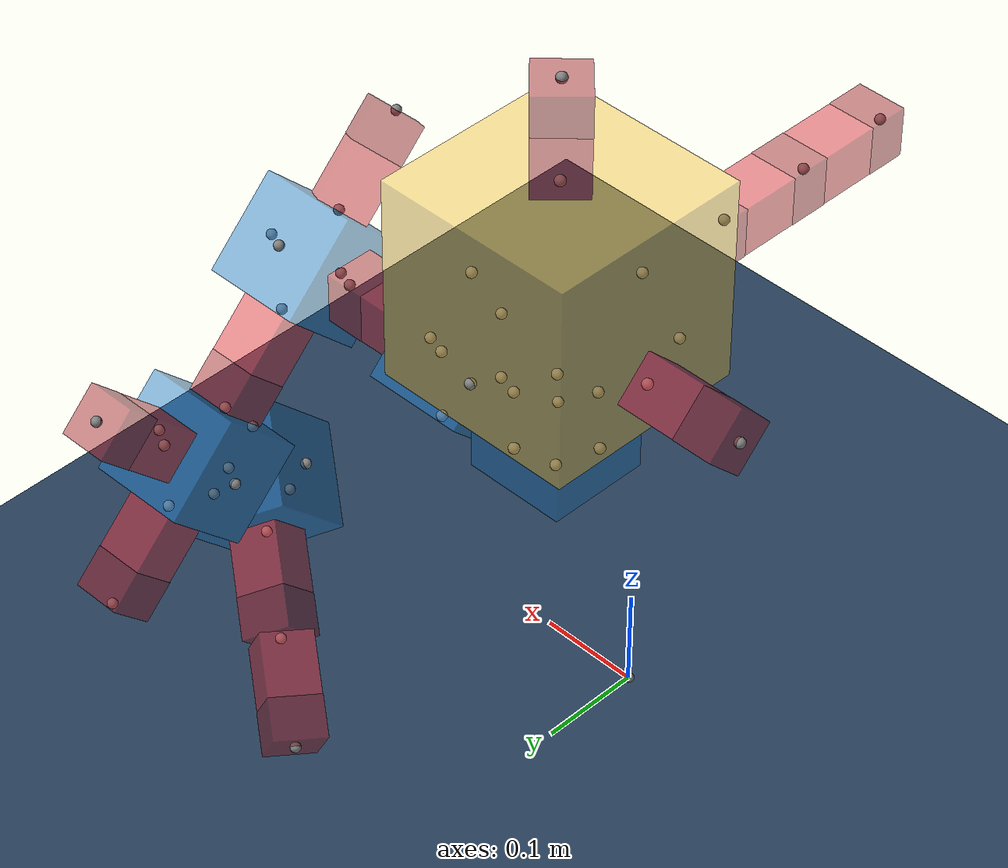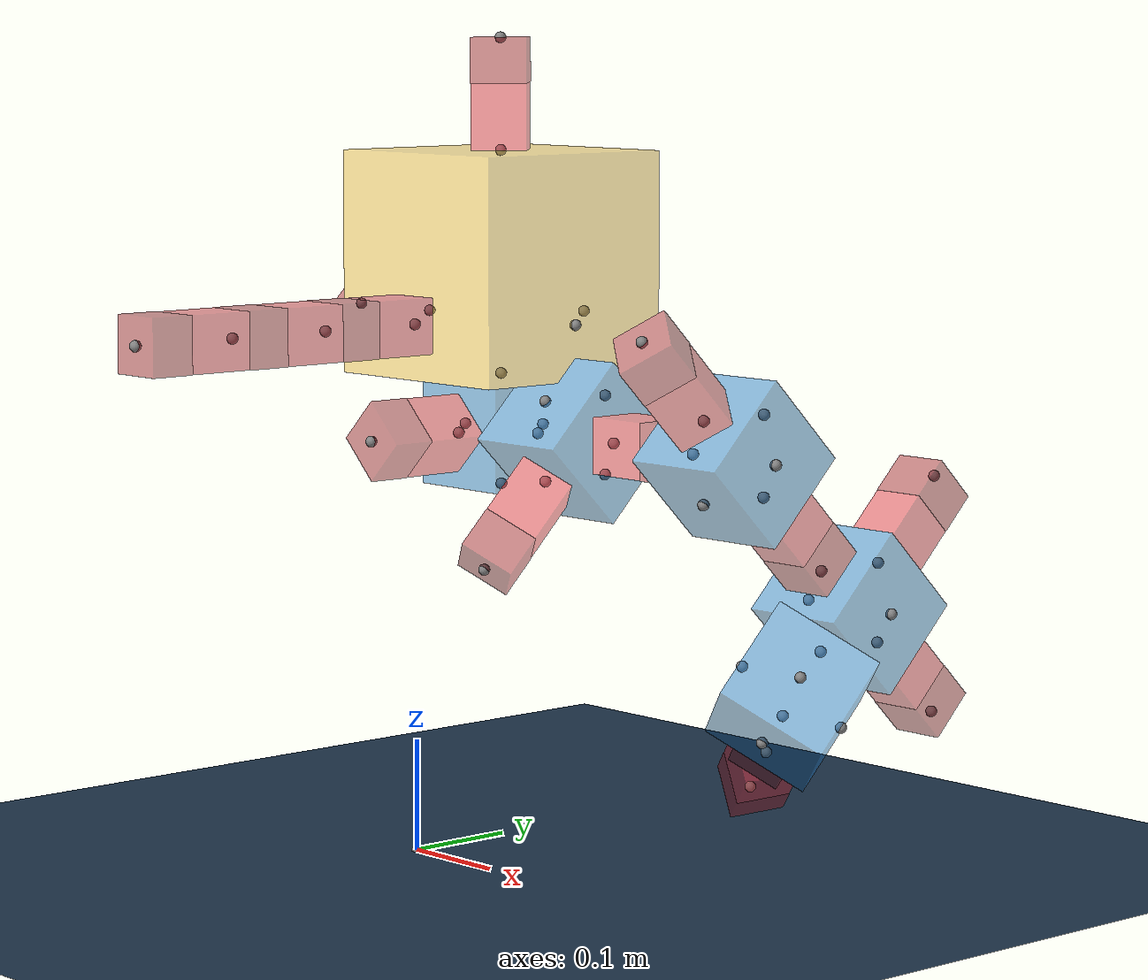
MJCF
<mujoco model="Simple Flat World">
  <compiler angle="radian"/>

  <option integrator="implicitfast"/>

  <visual>
    <global offwidth="1280" offheight="960"/>
  </visual>

  <default>
    <default class="robot1_main">
      <default class="robot1_0-11-1-main">
        <default class="robot1_0-11-1-11-29-0-main"/>
        <default class="robot1_0-11-1-29-18-0-main"/>
      </default>
      <default class="robot1_0-4-3-main"/>
      <default class="robot1_0-23-4-main"/>
      <default class="robot1_0-24-5-main"/>
      <default class="robot1_24-14-3-main"/>
      <default class="robot1_24-15-4-main"/>
      <default class="robot1_14-9-0-main"/>
      <default class="robot1_14-21-5-main"/>
      <default class="robot1_9-3-0-main"/>
      <default class="robot1_3-22-2-main"/>
      <default class="robot1_3-1-3-main"/>
      <default class="robot1_1-12-0-main"/>
      <default class="robot1_12-2-4-main"/>
      <default class="robot1_12-19-0-main"/>
      <default class="robot1_12-7-5-main"/>
      <default class="robot1_7-10-5-main"/>
      <default class="robot1_10-5-0-main"/>
    </default>
  </default>

  <asset>
    <texture type="2d" colorspace="auto" name="floor" builtin="checker" rgb1="0.1 0.2 0.3" rgb2="0.2 0.3 0.4" width="600" height="600"/>
    <material name="floor" texture="floor" texuniform="true" texrepeat="3 3"/>
  </asset>

  <worldbody>
    <site pos="0 0 0"/>
    <camera name="ortho-cam" pos="-5 0 5" quat="0.653281 0.270598 -0.270598 -0.653281" orthographic="true" fovy="5"/>
    <light name="light" pos="0 0 1" dir="0 0 -1" type="directional" castshadow="false"/>
    <body name="floor">
      <geom name="floor" size="5 5 0.5" type="plane" material="floor"/>
    </body>
    <body name="robot1_world" pos="0 0 0.521978">
      <joint type="free"/>
      <body name="robot1_core">
        <geom name="robot1_core" size="0.1 0.1 0.1" pos="0 0.1 0" type="box" mass="1" rgba="0.992157 0.792157 0.25098 0.5"/>
        <site name="robot1_core-front" pos="0 0.2 -0.05"/>
        <site name="robot1_core-back" pos="0 0 -0.05" quat="0 0 0 1"/>
        <site name="robot1_core-left" pos="-0.1 0.1 -0.05" quat="0.707107 0 0 0.707107"/>
        <site name="robot1_core-right" pos="0.1 0.1 -0.05" quat="-0.707107 0 0 0.707107"/>
        <site name="robot1_core-top" pos="0 0.1 0.1" quat="0.707107 0.707107 0 0"/>
        <site name="robot1_core-bottom" pos="0 0.1 -0.1" quat="0 0 -0.707107 0.707107"/>
        <body name="robot1_0-11-1-hinge" pos="0 0 -0.05" quat="0 -1 0 0">
          <body name="robot1_0-11-1-stator" pos="0 0.03 0">
            <geom name="robot1_0-11-1-stator" size="0.02475 0.0297 0.02475" type="box" mass="0.02" rgba="0.87451 0.160784 0.207843 0.5"/>
          </body>
          <body name="robot1_0-11-1-rotor" pos="0 0.08 0">
            <joint name="robot1_0-11-1-servo" pos="0 -0.02 0" axis="0 0 1"/>
            <geom name="robot1_0-11-1-rotor" size="0.025 0.02 0.025" type="box" mass="0.04" rgba="0.627451 0.0941176 0.129412 0.5"/>
            <site name="robot1_0-11-1-hinge-front" pos="0 0.02 0"/>
            <body name="robot1_0-11-1-11-29-0-hinge" pos="0 0.02 0" quat="0 0 1 0">
              <body name="robot1_0-11-1-11-29-0-stator" pos="0 0.03 0">
                <geom name="robot1_0-11-1-11-29-0-stator" size="0.02475 0.0297 0.02475" type="box" mass="0.02" rgba="0.87451 0.160784 0.207843 0.5"/>
              </body>
              <body name="robot1_0-11-1-11-29-0-rotor" pos="0 0.08 0">
                <joint name="robot1_0-11-1-11-29-0-servo" pos="0 -0.02 0" axis="0 0 1"/>
                <geom name="robot1_0-11-1-11-29-0-rotor" size="0.025 0.02 0.025" type="box" mass="0.04" rgba="0.627451 0.0941176 0.129412 0.5"/>
                <site name="robot1_0-11-1-11-29-0-hinge-front" pos="0 0.02 0"/>
                <body name="robot1_0-11-1-29-18-0-hinge" pos="0 0.02 0" quat="0 0 1 0">
                  <body name="robot1_0-11-1-29-18-0-stator" pos="0 0.03 0">
                    <geom name="robot1_0-11-1-29-18-0-stator" size="0.02475 0.0297 0.02475" type="box" mass="0.02" rgba="0.87451 0.160784 0.207843 0.5"/>
                  </body>
                  <body name="robot1_0-11-1-29-18-0-rotor" pos="0 0.08 0">
                    <joint name="robot1_0-11-1-29-18-0-servo" pos="0 -0.02 0" axis="0 0 1"/>
                    <geom name="robot1_0-11-1-29-18-0-rotor" size="0.025 0.02 0.025" type="box" mass="0.04" rgba="0.627451 0.0941176 0.129412 0.5"/>
                    <site name="robot1_0-11-1-29-18-0-hinge-front" pos="0 0.02 0"/>
                  </body>
                </body>
              </body>
            </body>
          </body>
        </body>
        <body name="robot1_0-4-3-hinge" pos="-0.1 0.1 -0.05" quat="0.653215 -0.270759 0.270759 0.653215">
          <body name="robot1_0-4-3-stator" pos="0 0.03 0">
            <geom name="robot1_0-4-3-stator" size="0.02475 0.0297 0.02475" type="box" mass="0.02" rgba="0.87451 0.160784 0.207843 0.5"/>
          </body>
          <body name="robot1_0-4-3-rotor" pos="0 0.08 0">
            <joint name="robot1_0-4-3-servo" pos="0 -0.02 0" axis="0 0 1"/>
            <geom name="robot1_0-4-3-rotor" size="0.025 0.02 0.025" type="box" mass="0.04" rgba="0.627451 0.0941176 0.129412 0.5"/>
            <site name="robot1_0-4-3-hinge-front" pos="0 0.02 0"/>
          </body>
        </body>
        <body name="robot1_0-23-4-hinge" pos="0 0.1 0.1" quat="0.270759 0.270759 0.653215 0.653215">
          <body name="robot1_0-23-4-stator" pos="0 0.03 0">
            <geom name="robot1_0-23-4-stator" size="0.02475 0.0297 0.02475" type="box" mass="0.02" rgba="0.87451 0.160784 0.207843 0.5"/>
          </body>
          <body name="robot1_0-23-4-rotor" pos="0 0.08 0">
            <joint name="robot1_0-23-4-servo" pos="0 -0.02 0" axis="0 0 1"/>
            <geom name="robot1_0-23-4-rotor" size="0.025 0.02 0.025" type="box" mass="0.04" rgba="0.627451 0.0941176 0.129412 0.5"/>
            <site name="robot1_0-23-4-hinge-front" pos="0 0.02 0"/>
          </body>
        </body>
        <body name="robot1_0-24-5-brick" pos="0 0.1 -0.1" quat="0 0 -0.707107 0.707107">
          <geom name="robot1_0-24-5-brick" size="0.05 0.05 0.05" pos="0 0.05 0" type="box" mass="0.055" rgba="0.109804 0.466667 0.764706 0.5"/>
          <site name="robot1_0-24-5-brick-front" pos="0 0.1 0"/>
          <site name="robot1_0-24-5-brick-left" pos="-0.05 0.05 0" quat="0.707107 0 0 0.707107"/>
          <site name="robot1_0-24-5-brick-right" pos="0.05 0.05 0" quat="-0.707107 0 0 0.707107"/>
          <site name="robot1_0-24-5-brick-top" pos="0 0.05 0.05" quat="0.707107 0.707107 0 0"/>
          <site name="robot1_0-24-5-brick-bottom" pos="0 0.05 -0.05" quat="0 0 -0.707107 0.707107"/>
          <body name="robot1_24-14-3-brick" pos="-0.05 0.05 0" quat="-0.270759 -0.653215 0.653215 -0.270759">
            <geom name="robot1_24-14-3-brick" size="0.05 0.05 0.05" pos="0 0.05 0" type="box" mass="0.055" rgba="0.109804 0.466667 0.764706 0.5"/>
            <site name="robot1_24-14-3-brick-front" pos="0 0.1 0"/>
            <site name="robot1_24-14-3-brick-left" pos="-0.05 0.05 0" quat="0.707107 0 0 0.707107"/>
            <site name="robot1_24-14-3-brick-right" pos="0.05 0.05 0" quat="-0.707107 0 0 0.707107"/>
            <site name="robot1_24-14-3-brick-top" pos="0 0.05 0.05" quat="0.707107 0.707107 0 0"/>
            <site name="robot1_24-14-3-brick-bottom" pos="0 0.05 -0.05" quat="0 0 -0.707107 0.707107"/>
            <body name="robot1_14-9-0-hinge" pos="0 0.1 0" quat="-0.923785 0 0.382911 0">
              <body name="robot1_14-9-0-stator" pos="0 0.03 0">
                <geom name="robot1_14-9-0-stator" size="0.02475 0.0297 0.02475" type="box" mass="0.02" rgba="0.87451 0.160784 0.207843 0.5"/>
              </body>
              <body name="robot1_14-9-0-rotor" pos="0 0.08 0">
                <joint name="robot1_14-9-0-servo" pos="0 -0.02 0" axis="0 0 1"/>
                <geom name="robot1_14-9-0-rotor" size="0.025 0.02 0.025" type="box" mass="0.04" rgba="0.627451 0.0941176 0.129412 0.5"/>
                <site name="robot1_14-9-0-hinge-front" pos="0 0.02 0"/>
                <body name="robot1_9-3-0-brick" pos="0 0.02 0" quat="0.923785 0 0.382911 0">
                  <geom name="robot1_9-3-0-brick" size="0.05 0.05 0.05" pos="0 0.05 0" type="box" mass="0.055" rgba="0.109804 0.466667 0.764706 0.5"/>
                  <site name="robot1_9-3-0-brick-front" pos="0 0.1 0"/>
                  <site name="robot1_9-3-0-brick-left" pos="-0.05 0.05 0" quat="0.707107 0 0 0.707107"/>
                  <site name="robot1_9-3-0-brick-right" pos="0.05 0.05 0" quat="-0.707107 0 0 0.707107"/>
                  <site name="robot1_9-3-0-brick-top" pos="0 0.05 0.05" quat="0.707107 0.707107 0 0"/>
                  <site name="robot1_9-3-0-brick-bottom" pos="0 0.05 -0.05" quat="0 0 -0.707107 0.707107"/>
                  <body name="robot1_3-22-2-hinge" pos="0.05 0.05 0" quat="-0.653215 -0.270759 -0.270759 0.653215">
                    <body name="robot1_3-22-2-stator" pos="0 0.03 0">
                      <geom name="robot1_3-22-2-stator" size="0.02475 0.0297 0.02475" type="box" mass="0.02" rgba="0.87451 0.160784 0.207843 0.5"/>
                    </body>
                    <body name="robot1_3-22-2-rotor" pos="0 0.08 0">
                      <joint name="robot1_3-22-2-servo" pos="0 -0.02 0" axis="0 0 1"/>
                      <geom name="robot1_3-22-2-rotor" size="0.025 0.02 0.025" type="box" mass="0.04" rgba="0.627451 0.0941176 0.129412 0.5"/>
                      <site name="robot1_3-22-2-hinge-front" pos="0 0.02 0"/>
                    </body>
                  </body>
                  <body name="robot1_3-1-3-hinge" pos="-0.05 0.05 0" quat="-0.5 -0.5 0.5 -0.5">
                    <body name="robot1_3-1-3-stator" pos="0 0.03 0">
                      <geom name="robot1_3-1-3-stator" size="0.02475 0.0297 0.02475" type="box" mass="0.02" rgba="0.87451 0.160784 0.207843 0.5"/>
                    </body>
                    <body name="robot1_3-1-3-rotor" pos="0 0.08 0">
                      <joint name="robot1_3-1-3-servo" pos="0 -0.02 0" axis="0 0 1"/>
                      <geom name="robot1_3-1-3-rotor" size="0.025 0.02 0.025" type="box" mass="0.04" rgba="0.627451 0.0941176 0.129412 0.5"/>
                      <site name="robot1_3-1-3-hinge-front" pos="0 0.02 0"/>
                      <body name="robot1_1-12-0-brick" pos="0 0.02 0" quat="0.707107 0 0.707107 0">
                        <geom name="robot1_1-12-0-brick" size="0.05 0.05 0.05" pos="0 0.05 0" type="box" mass="0.055" rgba="0.109804 0.466667 0.764706 0.5"/>
                        <site name="robot1_1-12-0-brick-front" pos="0 0.1 0"/>
                        <site name="robot1_1-12-0-brick-left" pos="-0.05 0.05 0" quat="0.707107 0 0 0.707107"/>
                        <site name="robot1_1-12-0-brick-right" pos="0.05 0.05 0" quat="-0.707107 0 0 0.707107"/>
                        <site name="robot1_1-12-0-brick-top" pos="0 0.05 0.05" quat="0.707107 0.707107 0 0"/>
                        <site name="robot1_1-12-0-brick-bottom" pos="0 0.05 -0.05" quat="0 0 -0.707107 0.707107"/>
                        <body name="robot1_12-2-4-hinge" pos="0 0.05 0.05" quat="0 0 0.707107 0.707107">
                          <body name="robot1_12-2-4-stator" pos="0 0.03 0">
                            <geom name="robot1_12-2-4-stator" size="0.02475 0.0297 0.02475" type="box" mass="0.02" rgba="0.87451 0.160784 0.207843 0.5"/>
                          </body>
                          <body name="robot1_12-2-4-rotor" pos="0 0.08 0">
                            <joint name="robot1_12-2-4-servo" pos="0 -0.02 0" axis="0 0 1"/>
                            <geom name="robot1_12-2-4-rotor" size="0.025 0.02 0.025" type="box" mass="0.04" rgba="0.627451 0.0941176 0.129412 0.5"/>
                            <site name="robot1_12-2-4-hinge-front" pos="0 0.02 0"/>
                          </body>
                        </body>
                        <body name="robot1_12-19-0-hinge" pos="0 0.1 0">
                          <body name="robot1_12-19-0-stator" pos="0 0.03 0">
                            <geom name="robot1_12-19-0-stator" size="0.02475 0.0297 0.02475" type="box" mass="0.02" rgba="0.87451 0.160784 0.207843 0.5"/>
                          </body>
                          <body name="robot1_12-19-0-rotor" pos="0 0.08 0">
                            <joint name="robot1_12-19-0-servo" pos="0 -0.02 0" axis="0 0 1"/>
                            <geom name="robot1_12-19-0-rotor" size="0.025 0.02 0.025" type="box" mass="0.04" rgba="0.627451 0.0941176 0.129412 0.5"/>
                            <site name="robot1_12-19-0-hinge-front" pos="0 0.02 0"/>
                          </body>
                        </body>
                        <body name="robot1_12-7-5-brick" pos="0 0.05 -0.05" quat="0.270759 -0.270759 0.653215 -0.653215">
                          <geom name="robot1_12-7-5-brick" size="0.05 0.05 0.05" pos="0 0.05 0" type="box" mass="0.055" rgba="0.109804 0.466667 0.764706 0.5"/>
                          <site name="robot1_12-7-5-brick-front" pos="0 0.1 0"/>
                          <site name="robot1_12-7-5-brick-left" pos="-0.05 0.05 0" quat="0.707107 0 0 0.707107"/>
                          <site name="robot1_12-7-5-brick-right" pos="0.05 0.05 0" quat="-0.707107 0 0 0.707107"/>
                          <site name="robot1_12-7-5-brick-top" pos="0 0.05 0.05" quat="0.707107 0.707107 0 0"/>
                          <site name="robot1_12-7-5-brick-bottom" pos="0 0.05 -0.05" quat="0 0 -0.707107 0.707107"/>
                          <body name="robot1_7-10-5-hinge" pos="0 0.05 -0.05" quat="0 0 -0.707107 0.707107">
                            <body name="robot1_7-10-5-stator" pos="0 0.03 0">
                              <geom name="robot1_7-10-5-stator" size="0.02475 0.0297 0.02475" type="box" mass="0.02" rgba="0.87451 0.160784 0.207843 0.5"/>
                            </body>
                            <body name="robot1_7-10-5-rotor" pos="0 0.08 0">
                              <joint name="robot1_7-10-5-servo" pos="0 -0.02 0" axis="0 0 1"/>
                              <geom name="robot1_7-10-5-rotor" size="0.025 0.02 0.025" type="box" mass="0.04" rgba="0.627451 0.0941176 0.129412 0.5"/>
                              <site name="robot1_7-10-5-hinge-front" pos="0 0.02 0"/>
                              <body name="robot1_10-5-0-hinge" pos="0 0.02 0" quat="0.923785 0 0.382911 0">
                                <body name="robot1_10-5-0-stator" pos="0 0.03 0">
                                  <geom name="robot1_10-5-0-stator" size="0.02475 0.0297 0.02475" type="box" mass="0.02" rgba="0.87451 0.160784 0.207843 0.5"/>
                                </body>
                                <body name="robot1_10-5-0-rotor" pos="0 0.08 0">
                                  <joint name="robot1_10-5-0-servo" pos="0 -0.02 0" axis="0 0 1"/>
                                  <geom name="robot1_10-5-0-rotor" size="0.025 0.02 0.025" type="box" mass="0.04" rgba="0.627451 0.0941176 0.129412 0.5"/>
                                  <site name="robot1_10-5-0-hinge-front" pos="0 0.02 0"/>
                                </body>
                              </body>
                            </body>
                          </body>
                        </body>
                      </body>
                    </body>
                  </body>
                </body>
              </body>
            </body>
            <body name="robot1_14-21-5-hinge" pos="0 0.05 -0.05" quat="0.270759 -0.270759 0.653215 -0.653215">
              <body name="robot1_14-21-5-stator" pos="0 0.03 0">
                <geom name="robot1_14-21-5-stator" size="0.02475 0.0297 0.02475" type="box" mass="0.02" rgba="0.87451 0.160784 0.207843 0.5"/>
              </body>
              <body name="robot1_14-21-5-rotor" pos="0 0.08 0">
                <joint name="robot1_14-21-5-servo" pos="0 -0.02 0" axis="0 0 1"/>
                <geom name="robot1_14-21-5-rotor" size="0.025 0.02 0.025" type="box" mass="0.04" rgba="0.627451 0.0941176 0.129412 0.5"/>
                <site name="robot1_14-21-5-hinge-front" pos="0 0.02 0"/>
              </body>
            </body>
          </body>
          <body name="robot1_24-15-4-hinge" pos="0 0.05 0.05" quat="-0.653215 -0.653215 0.270759 0.270759">
            <body name="robot1_24-15-4-stator" pos="0 0.03 0">
              <geom name="robot1_24-15-4-stator" size="0.02475 0.0297 0.02475" type="box" mass="0.02" rgba="0.87451 0.160784 0.207843 0.5"/>
            </body>
            <body name="robot1_24-15-4-rotor" pos="0 0.08 0">
              <joint name="robot1_24-15-4-servo" pos="0 -0.02 0" axis="0 0 1"/>
              <geom name="robot1_24-15-4-rotor" size="0.025 0.02 0.025" type="box" mass="0.04" rgba="0.627451 0.0941176 0.129412 0.5"/>
              <site name="robot1_24-15-4-hinge-front" pos="0 0.02 0"/>
            </body>
          </body>
        </body>
      </body>
    </body>
  </worldbody>

  <contact>
    <exclude body1="robot1_0-11-1-stator" body2="robot1_0-11-1-rotor"/>
    <exclude body1="robot1_0-11-1-11-29-0-stator" body2="robot1_0-11-1-11-29-0-rotor"/>
    <exclude body1="robot1_0-11-1-29-18-0-stator" body2="robot1_0-11-1-29-18-0-rotor"/>
    <exclude body1="robot1_0-4-3-stator" body2="robot1_0-4-3-rotor"/>
    <exclude body1="robot1_0-23-4-stator" body2="robot1_0-23-4-rotor"/>
    <exclude body1="robot1_14-9-0-stator" body2="robot1_14-9-0-rotor"/>
    <exclude body1="robot1_3-22-2-stator" body2="robot1_3-22-2-rotor"/>
    <exclude body1="robot1_3-1-3-stator" body2="robot1_3-1-3-rotor"/>
    <exclude body1="robot1_12-2-4-stator" body2="robot1_12-2-4-rotor"/>
    <exclude body1="robot1_12-19-0-stator" body2="robot1_12-19-0-rotor"/>
    <exclude body1="robot1_7-10-5-stator" body2="robot1_7-10-5-rotor"/>
    <exclude body1="robot1_10-5-0-stator" body2="robot1_10-5-0-rotor"/>
    <exclude body1="robot1_14-21-5-stator" body2="robot1_14-21-5-rotor"/>
    <exclude body1="robot1_24-15-4-stator" body2="robot1_24-15-4-rotor"/>
  </contact>

  <actuator>
    <general name="robot1_0-11-1-servo" joint="robot1_0-11-1-servo" ctrlrange="-1.5708 1.5708" dynprm="0 0 0 0 0 0 0 0 0 0" biastype="affine" biasprm="0 -1 -1"/>
    <general name="robot1_0-11-1-11-29-0-servo" joint="robot1_0-11-1-11-29-0-servo" ctrlrange="-1.5708 1.5708" dynprm="0 0 0 0 0 0 0 0 0 0" biastype="affine" biasprm="0 -1 -1"/>
    <general name="robot1_0-11-1-29-18-0-servo" joint="robot1_0-11-1-29-18-0-servo" ctrlrange="-1.5708 1.5708" dynprm="0 0 0 0 0 0 0 0 0 0" biastype="affine" biasprm="0 -1 -1"/>
    <general name="robot1_0-4-3-servo" joint="robot1_0-4-3-servo" ctrlrange="-1.5708 1.5708" dynprm="0 0 0 0 0 0 0 0 0 0" biastype="affine" biasprm="0 -1 -1"/>
    <general name="robot1_0-23-4-servo" joint="robot1_0-23-4-servo" ctrlrange="-1.5708 1.5708" dynprm="0 0 0 0 0 0 0 0 0 0" biastype="affine" biasprm="0 -1 -1"/>
    <general name="robot1_24-15-4-servo" joint="robot1_24-15-4-servo" ctrlrange="-1.5708 1.5708" dynprm="0 0 0 0 0 0 0 0 0 0" biastype="affine" biasprm="0 -1 -1"/>
    <general name="robot1_14-9-0-servo" joint="robot1_14-9-0-servo" ctrlrange="-1.5708 1.5708" dynprm="0 0 0 0 0 0 0 0 0 0" biastype="affine" biasprm="0 -1 -1"/>
    <general name="robot1_14-21-5-servo" joint="robot1_14-21-5-servo" ctrlrange="-1.5708 1.5708" dynprm="0 0 0 0 0 0 0 0 0 0" biastype="affine" biasprm="0 -1 -1"/>
    <general name="robot1_3-22-2-servo" joint="robot1_3-22-2-servo" ctrlrange="-1.5708 1.5708" dynprm="0 0 0 0 0 0 0 0 0 0" biastype="affine" biasprm="0 -1 -1"/>
    <general name="robot1_3-1-3-servo" joint="robot1_3-1-3-servo" ctrlrange="-1.5708 1.5708" dynprm="0 0 0 0 0 0 0 0 0 0" biastype="affine" biasprm="0 -1 -1"/>
    <general name="robot1_12-2-4-servo" joint="robot1_12-2-4-servo" ctrlrange="-1.5708 1.5708" dynprm="0 0 0 0 0 0 0 0 0 0" biastype="affine" biasprm="0 -1 -1"/>
    <general name="robot1_12-19-0-servo" joint="robot1_12-19-0-servo" ctrlrange="-1.5708 1.5708" dynprm="0 0 0 0 0 0 0 0 0 0" biastype="affine" biasprm="0 -1 -1"/>
    <general name="robot1_7-10-5-servo" joint="robot1_7-10-5-servo" ctrlrange="-1.5708 1.5708" dynprm="0 0 0 0 0 0 0 0 0 0" biastype="affine" biasprm="0 -1 -1"/>
    <general name="robot1_10-5-0-servo" joint="robot1_10-5-0-servo" ctrlrange="-1.5708 1.5708" dynprm="0 0 0 0 0 0 0 0 0 0" biastype="affine" biasprm="0 -1 -1"/>
  </actuator>
</mujoco>
